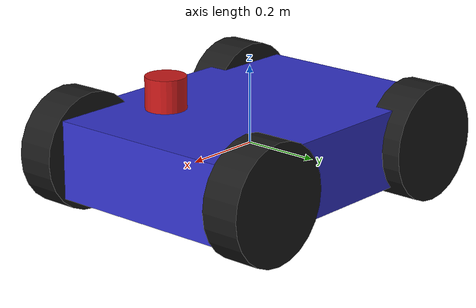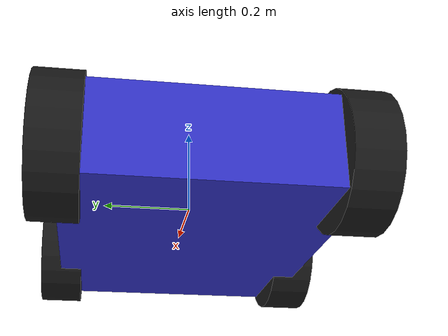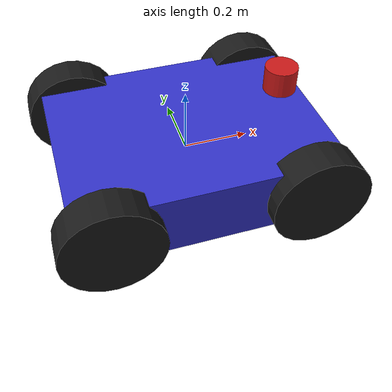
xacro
<?xml version="1.0"?>
<robot xmlns:xacro="http://www.ros.org/wiki/xacro" name="farm_bot">

  <!-- Define properties -->
  <xacro:property name="base_width" value="0.6"/>
  <xacro:property name="base_length" value="0.8"/>
  <xacro:property name="base_height" value="0.2"/>
  <xacro:property name="wheel_radius" value="0.15"/>
  <xacro:property name="wheel_width" value="0.1"/>
  <xacro:property name="wheel_separation" value="0.6"/>
  <xacro:property name="wheel_base" value="0.6"/>

  <!-- Base Link -->
  <link name="base_link">
    <visual>
      <geometry>
        <box size="${base_length} ${base_width} ${base_height}"/>
      </geometry>
      <material name="blue">
        <color rgba="0.2 0.2 0.8 1.0"/>
      </material>
    </visual>
    <collision>
      <geometry>
        <box size="${base_length} ${base_width} ${base_height}"/>
      </geometry>
    </collision>
    <inertial>
      <mass value="20.0"/>
      <inertia ixx="0.4" ixy="0.0" ixz="0.0" iyy="0.8" iyz="0.0" izz="1.0"/>
    </inertial>
  </link>

  <!-- Wheel Macro -->
  <xacro:macro name="wheel" params="prefix x y">
    <link name="${prefix}_wheel">
      <visual>
        <geometry>
          <cylinder radius="${wheel_radius}" length="${wheel_width}"/>
        </geometry>
        <origin xyz="0 0 0" rpy="1.5708 0 0"/>
        <material name="black">
          <color rgba="0.1 0.1 0.1 1.0"/>
        </material>
      </visual>
      <collision>
        <geometry>
          <cylinder radius="${wheel_radius}" length="${wheel_width}"/>
        </geometry>
        <origin xyz="0 0 0" rpy="1.5708 0 0"/>
      </collision>
      <inertial>
        <mass value="2.0"/>
        <inertia ixx="0.015" ixy="0.0" ixz="0.0" iyy="0.015" iyz="0.0" izz="0.023"/>
      </inertial>
    </link>

    <joint name="${prefix}_wheel_joint" type="continuous">
      <parent link="base_link"/>
      <child link="${prefix}_wheel"/>
      <origin xyz="${x} ${y} 0" rpy="0 0 0"/>
      <axis xyz="0 1 0"/>
    </joint>
  </xacro:macro>

  <!-- Create all 4 wheels -->
  <xacro:wheel prefix="front_left" x="${wheel_base/2}" y="${wheel_separation/2}"/>
  <xacro:wheel prefix="front_right" x="${wheel_base/2}" y="${-wheel_separation/2}"/>
  <xacro:wheel prefix="rear_left" x="${-wheel_base/2}" y="${wheel_separation/2}"/>
  <xacro:wheel prefix="rear_right" x="${-wheel_base/2}" y="${-wheel_separation/2}"/>

  <!-- LiDAR Link -->
  <link name="lidar_link">
    <visual>
      <geometry>
        <cylinder radius="0.05" length="0.08"/>
      </geometry>
      <material name="red">
        <color rgba="0.8 0.1 0.1 1.0"/>
      </material>
    </visual>
    <collision>
      <geometry>
        <cylinder radius="0.05" length="0.08"/>
      </geometry>
    </collision>
    <inertial>
      <mass value="0.5"/>
      <inertia ixx="0.001" ixy="0.0" ixz="0.0" iyy="0.001" iyz="0.0" izz="0.001"/>
    </inertial>
  </link>

  <joint name="lidar_joint" type="fixed">
    <parent link="base_link"/>
    <child link="lidar_link"/>
    <origin xyz="0.3 0 0.2" rpy="0 0 0"/>
  </joint>

  <!-- Gazebo-specific configurations -->
  <gazebo reference="base_link">
    <material>Gazebo/Blue</material>
  </gazebo>

  <gazebo reference="lidar_link">
    <material>Gazebo/Red</material>
    <sensor name="lidar_sensor" type="gpu_lidar">
      <topic>scan</topic>
      <update_rate>10</update_rate>
      <lidar>
        <scan>
          <horizontal>
            <samples>360</samples>
            <resolution>1</resolution>
            <min_angle>-3.14159</min_angle>
            <max_angle>3.14159</max_angle>
          </horizontal>
        </scan>
        <range>
          <min>0.2</min>
          <max>10.0</max>
          <resolution>0.01</resolution>
        </range>
        <noise>
          <type>gaussian</type>
          <mean>0.0</mean>
          <stddev>0.01</stddev>
        </noise>
      </lidar>
      <always_on>1</always_on>
      <visualize>true</visualize>
    </sensor>
  </gazebo>

  <!-- Differential Drive Plugin -->
  <gazebo>
    <plugin filename="libignition-gazebo-diff-drive-system.so"
            name="ignition::gazebo::systems::DiffDrive">
      <left_joint>front_left_wheel_joint</left_joint>
      <left_joint>rear_left_wheel_joint</left_joint>
      <right_joint>front_right_wheel_joint</right_joint>
      <right_joint>rear_right_wheel_joint</right_joint>
      <wheel_separation>${wheel_separation}</wheel_separation>
      <wheel_radius>${wheel_radius}</wheel_radius>
      <max_linear_acceleration>1.0</max_linear_acceleration>
      <max_angular_acceleration>2.0</max_angular_acceleration>
      <odom_publish_frequency>50</odom_publish_frequency>
      <topic>cmd_vel</topic>
      <odom_topic>odom</odom_topic>
      <frame_id>odom</frame_id>
      <child_frame_id>base_link</child_frame_id>
    </plugin>
  </gazebo>

</robot>
